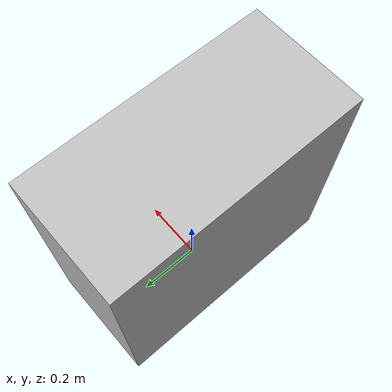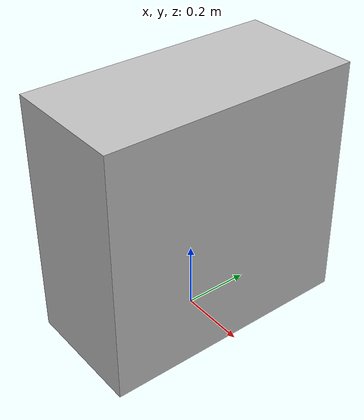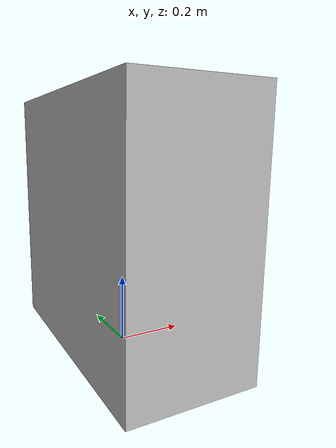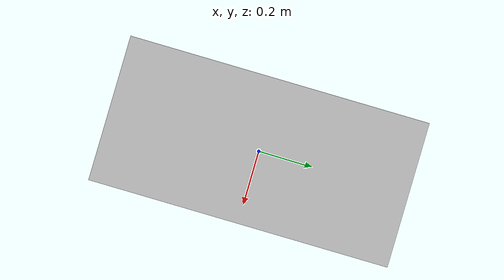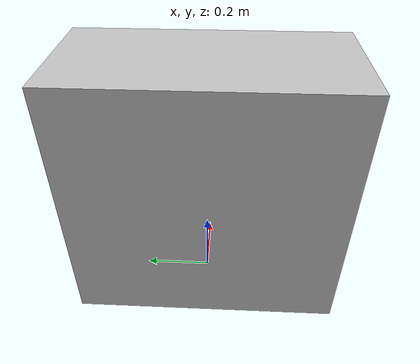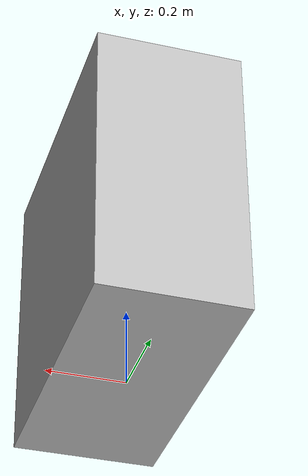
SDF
<?xml version="1.0"?>
<sdf version="1.6">
  <model name="rwc2016/cabinet_2slides">
    <link name="1_link">
      <collision name="1_col">
        <geometry>
          <box>
            <size>0.37 0.768 0.741</size>
          </box>
        </geometry>
      </collision>
      <visual name="1_vis">
        <geometry>
          <box>
            <size>0.37 0.768 0.741</size>
          </box>
        </geometry>
        <material>
          <ambient>0.75 0.75 0.75 1</ambient>
        </material>
      </visual>
      <pose>0 0 0.37 0 0 0</pose>
    </link>
    <link name="on_top_of">
      <virtual_volume name="on_top_of_vv">
        <geometry>
          <box>
            <size>0.31 0.708 0.25</size>
          </box>
        </geometry>
        <pose>0.0 0.0 0.8855 0 0 0</pose>
      </virtual_volume>
    </link>
    <link name="in_front_of">
      <virtual_volume name="in_front_of_vv">
        <geometry>
          <box>
            <size>0.2 0.568 0.01</size>
          </box>
        </geometry>
        <pose>0.685 0.0 0.005 0 0 0</pose>
      </virtual_volume>
    </link>
    <static>true</static>
  </model>
</sdf>
